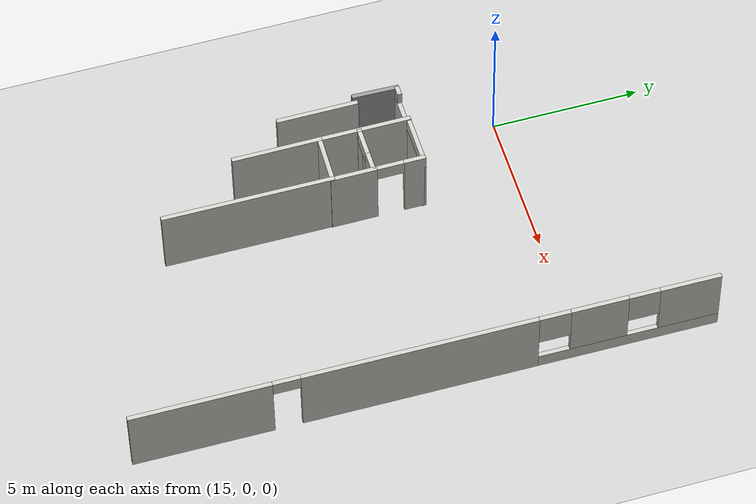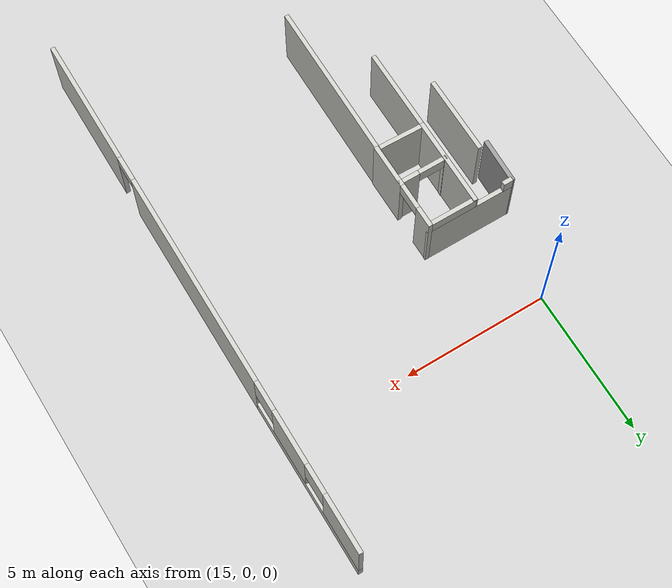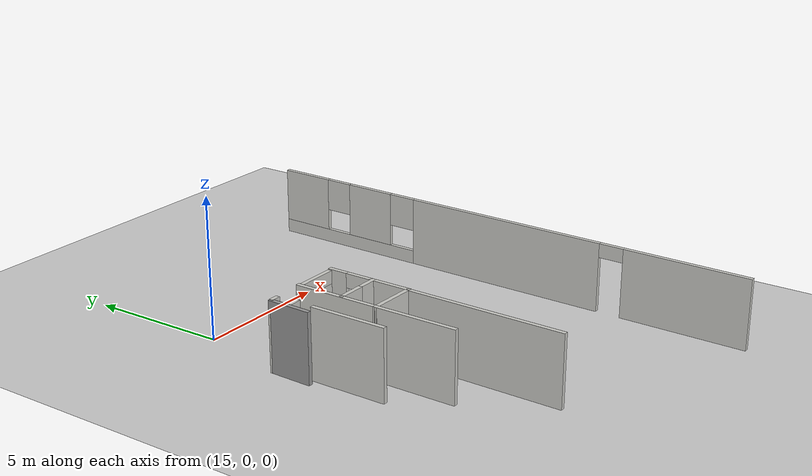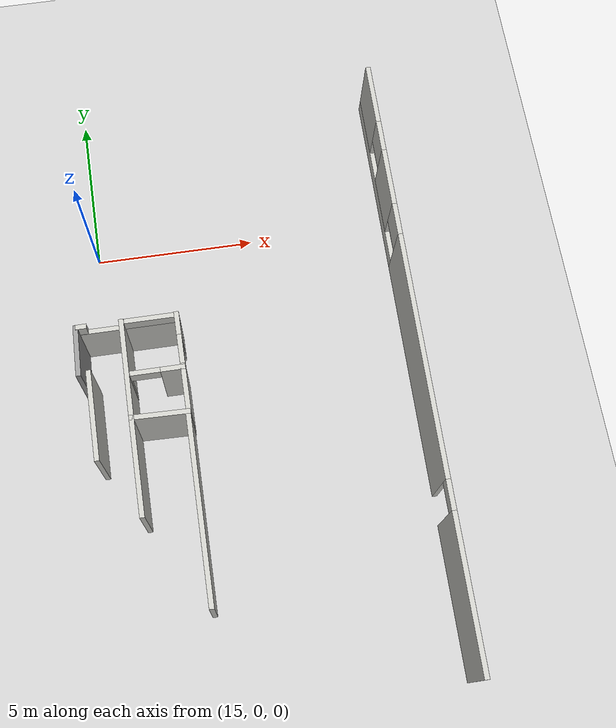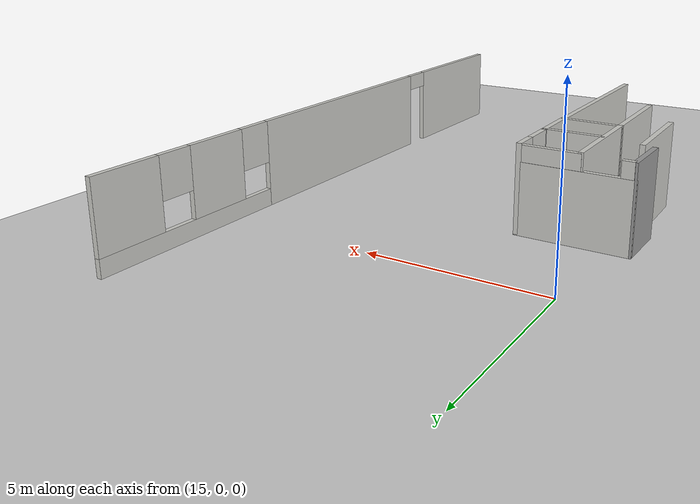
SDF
<sdf version="1.6">
 <world name="default">
  <model name="ground_plane">
   <static>1</static>
   <link name="link">
    <collision name="collision">
     <geometry><plane><normal>0 0 1</normal><size>100 100</size></plane></geometry>
     <surface><friction><ode><mu>100</mu><mu2>50</mu2></ode></friction></surface>
    </collision>
    <visual name="visual">
     <cast_shadows>0</cast_shadows>
     <geometry><plane><normal>0 0 1</normal><size>100 100</size></plane></geometry>
     <material>
      <script><uri>file://media/materials/scripts/gazebo.material</uri><name>Gazebo/Grey</name></script>
     </material>
    </visual>
   </link>
  </model>
  <model name="Erle Office">
   <link name="Wall_44">
    <pose>14.072 -0.286045 0 0 -0 1.56075</pose>
    <visual name="Wall_44_Visual_1">
     <pose>-0.251304 0 1.25 0 -0 0</pose>
     <geometry><box><size>7.67562 0.15 2.5</size></box></geometry>
     <material>
      <script><uri>file://media/materials/scripts/gazebo.material</uri><name>Gazebo/CeilingTiled</name></script>
      <ambient>1 1 1 1</ambient>
      <diffuse>1 1 1 1</diffuse>
      <specular>0 0 0 1</specular>
      <emissive>0 0 0 1</emissive>
     </material>
    </visual>
    <visual name="Wall_44_Visual_0">
     <pose>-7.27546 0 1.25 0 -0 0</pose>
     <geometry><box><size>4.57268 0.15 2.5</size></box></geometry>
     <material>
      <script><uri>file://media/materials/scripts/gazebo.material</uri><name>Gazebo/CeilingTiled</name></script>
      <ambient>1 1 1 1</ambient>
      <diffuse>1 1 1 1</diffuse>
      <specular>0 0 0 1</specular>
      <emissive>0 0 0 1</emissive>
     </material>
    </visual>
    <visual name="Wall_44_Visual_2">
     <pose>6.57415 0 0.25 0 -0 0</pose>
     <geometry><box><size>5.97529 0.15 0.5</size></box></geometry>
     <material>
      <script><uri>file://media/materials/scripts/gazebo.material</uri><name>Gazebo/CeilingTiled</name></script>
      <ambient>1 1 1 1</ambient>
      <diffuse>1 1 1 1</diffuse>
      <specular>0 0 0 1</specular>
      <emissive>0 0 0 1</emissive>
     </material>
    </visual>
    <visual name="Wall_44_Visual_3">
     <pose>5.5734 0 1.5 0 -0 0</pose>
     <geometry><box><size>1.8927 0.15 2</size></box></geometry>
     <material>
      <script><uri>file://media/materials/scripts/gazebo.material</uri><name>Gazebo/CeilingTiled</name></script>
      <ambient>1 1 1 1</ambient>
      <diffuse>1 1 1 1</diffuse>
      <specular>0 0 0 1</specular>
      <emissive>0 0 0 1</emissive>
     </material>
    </visual>
    <visual name="Wall_44_Visual_4">
     <pose>8.55556 0 1.5 0 -0 0</pose>
     <geometry><box><size>2.01248 0.15 2</size></box></geometry>
     <material>
      <script><uri>file://media/materials/scripts/gazebo.material</uri><name>Gazebo/CeilingTiled</name></script>
      <ambient>1 1 1 1</ambient>
      <diffuse>1 1 1 1</diffuse>
      <specular>0 0 0 1</specular>
      <emissive>0 0 0 1</emissive>
     </material>
    </visual>
    <visual name="Wall_44_Visual_5">
     <pose>4.10678 0 1.9 0 -0 0</pose>
     <geometry><box><size>1.04054 0.15 1.2</size></box></geometry>
     <material>
      <script><uri>file://media/materials/scripts/gazebo.material</uri><name>Gazebo/CeilingTiled</name></script>
      <ambient>1 1 1 1</ambient>
      <diffuse>1 1 1 1</diffuse>
      <specular>0 0 0 1</specular>
      <emissive>0 0 0 1</emissive>
     </material>
    </visual>
    <visual name="Wall_44_Visual_6">
     <pose>7.03453 0 1.9 0 -0 0</pose>
     <geometry><box><size>1.02956 0.15 1.2</size></box></geometry>
     <material>
      <script><uri>file://media/materials/scripts/gazebo.material</uri><name>Gazebo/CeilingTiled</name></script>
      <ambient>1 1 1 1</ambient>
      <diffuse>1 1 1 1</diffuse>
      <specular>0 0 0 1</specular>
      <emissive>0 0 0 1</emissive>
     </material>
    </visual>
    <visual name="Wall_44_Visual_7">
     <pose>-4.53911 0 2.25 0 -0 0</pose>
     <geometry><box><size>0.9 0.15 0.5</size></box></geometry>
     <material>
      <script><uri>file://media/materials/scripts/gazebo.material</uri><name>Gazebo/CeilingTiled</name></script>
      <ambient>1 1 1 1</ambient>
      <diffuse>1 1 1 1</diffuse>
      <specular>0 0 0 1</specular>
      <emissive>0 0 0 1</emissive>
     </material>
    </visual>
    <collision name="Wall_44_Collision_0">
     <pose>-7.27546 0 1.25 0 -0 0</pose>
     <geometry><box><size>4.57268 0.15 2.5</size></box></geometry>
     <surface>
      <friction>
       <ode><mu>1</mu><mu2>1</mu2><fdir1>0 0 0</fdir1><slip1>0</slip1><slip2>0</slip2></ode>
       <torsional>
        <coefficient>1</coefficient>
        <patch_radius>0</patch_radius>
        <surface_radius>0</surface_radius>
        <use_patch_radius>1</use_patch_radius>
        <ode><slip>0</slip></ode>
       </torsional>
      </friction>
      <bounce><restitution_coefficient>0</restitution_coefficient><threshold>1e+06</threshold></bounce>
      <contact>
       <collide_without_contact>0</collide_without_contact>
       <collide_without_contact_bitmask>1</collide_without_contact_bitmask>
       <collide_bitmask>1</collide_bitmask>
       <ode>
        <soft_cfm>0</soft_cfm>
        <soft_erp>0.2</soft_erp>
        <kp>1e+13</kp>
        <kd>1</kd>
        <max_vel>0.01</max_vel>
        <min_depth>0</min_depth>
       </ode>
       <bullet>
        <split_impulse>1</split_impulse>
        <split_impulse_penetration_threshold>-0.01</split_impulse_penetration_threshold>
        <soft_cfm>0</soft_cfm>
        <soft_erp>0.2</soft_erp>
        <kp>1e+13</kp>
        <kd>1</kd>
       </bullet>
      </contact>
     </surface>
    </collision>
    <collision name="Wall_44_Collision_2">
     <pose>6.57415 0 0.25 0 -0 0</pose>
     <geometry><box><size>5.97529 0.15 0.5</size></box></geometry>
     <surface>
      <friction>
       <ode><mu>1</mu><mu2>1</mu2><fdir1>0 0 0</fdir1><slip1>0</slip1><slip2>0</slip2></ode>
       <torsional>
        <coefficient>1</coefficient>
        <patch_radius>0</patch_radius>
        <surface_radius>0</surface_radius>
        <use_patch_radius>1</use_patch_radius>
        <ode><slip>0</slip></ode>
       </torsional>
      </friction>
      <bounce><restitution_coefficient>0</restitution_coefficient><threshold>1e+06</threshold></bounce>
      <contact>
       <collide_without_contact>0</collide_without_contact>
       <collide_without_contact_bitmask>1</collide_without_contact_bitmask>
       <collide_bitmask>1</collide_bitmask>
       <ode>
        <soft_cfm>0</soft_cfm>
        <soft_erp>0.2</soft_erp>
        <kp>1e+13</kp>
        <kd>1</kd>
        <max_vel>0.01</max_vel>
        <min_depth>0</min_depth>
       </ode>
       <bullet>
        <split_impulse>1</split_impulse>
        <split_impulse_penetration_threshold>-0.01</split_impulse_penetration_threshold>
        <soft_cfm>0</soft_cfm>
        <soft_erp>0.2</soft_erp>
        <kp>1e+13</kp>
        <kd>1</kd>
       </bullet>
      </contact>
     </surface>
    </collision>
    <collision name="Wall_44_Collision_3">
     <pose>5.5734 0 1.5 0 -0 0</pose>
     <geometry><box><size>1.8927 0.15 2</size></box></geometry>
     <surface>
      <friction>
       <ode><mu>1</mu><mu2>1</mu2><fdir1>0 0 0</fdir1><slip1>0</slip1><slip2>0</slip2></ode>
       <torsional>
        <coefficient>1</coefficient>
        <patch_radius>0</patch_radius>
        <surface_radius>0</surface_radius>
        <use_patch_radius>1</use_patch_radius>
        <ode><slip>0</slip></ode>
       </torsional>
      </friction>
      <bounce><restitution_coefficient>0</restitution_coefficient><threshold>1e+06</threshold></bounce>
      <contact>
       <collide_without_contact>0</collide_without_contact>
       <collide_without_contact_bitmask>1</collide_without_contact_bitmask>
       <collide_bitmask>1</collide_bitmask>
       <ode>
        <soft_cfm>0</soft_cfm>
        <soft_erp>0.2</soft_erp>
        <kp>1e+13</kp>
        <kd>1</kd>
        <max_vel>0.01</max_vel>
        <min_depth>0</min_depth>
       </ode>
       <bullet>
        <split_impulse>1</split_impulse>
        <split_impulse_penetration_threshold>-0.01</split_impulse_penetration_threshold>
        <soft_cfm>0</soft_cfm>
        <soft_erp>0.2</soft_erp>
        <kp>1e+13</kp>
        <kd>1</kd>
       </bullet>
      </contact>
     </surface>
    </collision>
    <collision name="Wall_44_Collision_1">
     <pose>-0.251304 0 1.25 0 -0 0</pose>
     <geometry><box><size>7.67562 0.15 2.5</size></box></geometry>
     <surface>
      <friction>
       <ode><mu>1</mu><mu2>1</mu2><fdir1>0 0 0</fdir1><slip1>0</slip1><slip2>0</slip2></ode>
       <torsional>
        <coefficient>1</coefficient>
        <patch_radius>0</patch_radius>
        <surface_radius>0</surface_radius>
        <use_patch_radius>1</use_patch_radius>
        <ode><slip>0</slip></ode>
       </torsional>
      </friction>
      <bounce><restitution_coefficient>0</restitution_coefficient><threshold>1e+06</threshold></bounce>
      <contact>
       <collide_without_contact>0</collide_without_contact>
       <collide_without_contact_bitmask>1</collide_without_contact_bitmask>
       <collide_bitmask>1</collide_bitmask>
       <ode>
        <soft_cfm>0</soft_cfm>
        <soft_erp>0.2</soft_erp>
        <kp>1e+13</kp>
        <kd>1</kd>
        <max_vel>0.01</max_vel>
        <min_depth>0</min_depth>
       </ode>
       <bullet>
        <split_impulse>1</split_impulse>
        <split_impulse_penetration_threshold>-0.01</split_impulse_penetration_threshold>
        <soft_cfm>0</soft_cfm>
        <soft_erp>0.2</soft_erp>
        <kp>1e+13</kp>
        <kd>1</kd>
       </bullet>
      </contact>
     </surface>
    </collision>
    <collision name="Wall_44_Collision_4">
     <pose>8.55556 0 1.5 0 -0 0</pose>
     <geometry><box><size>2.01248 0.15 2</size></box></geometry>
     <surface>
      <friction>
       <ode><mu>1</mu><mu2>1</mu2><fdir1>0 0 0</fdir1><slip1>0</slip1><slip2>0</slip2></ode>
       <torsional>
        <coefficient>1</coefficient>
        <patch_radius>0</patch_radius>
        <surface_radius>0</surface_radius>
        <use_patch_radius>1</use_patch_radius>
        <ode><slip>0</slip></ode>
       </torsional>
      </friction>
      <bounce><restitution_coefficient>0</restitution_coefficient><threshold>1e+06</threshold></bounce>
      <contact>
       <collide_without_contact>0</collide_without_contact>
       <collide_without_contact_bitmask>1</collide_without_contact_bitmask>
       <collide_bitmask>1</collide_bitmask>
       <ode>
        <soft_cfm>0</soft_cfm>
        <soft_erp>0.2</soft_erp>
        <kp>1e+13</kp>
        <kd>1</kd>
        <max_vel>0.01</max_vel>
        <min_depth>0</min_depth>
       </ode>
       <bullet>
        <split_impulse>1</split_impulse>
        <split_impulse_penetration_threshold>-0.01</split_impulse_penetration_threshold>
        <soft_cfm>0</soft_cfm>
        <soft_erp>0.2</soft_erp>
        <kp>1e+13</kp>
        <kd>1</kd>
       </bullet>
      </contact>
     </surface>
    </collision>
    <collision name="Wall_44_Collision_5">
     <pose>4.10678 0 1.9 0 -0 0</pose>
     <geometry><box><size>1.04054 0.15 1.2</size></box></geometry>
     <surface>
      <friction>
       <ode><mu>1</mu><mu2>1</mu2><fdir1>0 0 0</fdir1><slip1>0</slip1><slip2>0</slip2></ode>
       <torsional>
        <coefficient>1</coefficient>
        <patch_radius>0</patch_radius>
        <surface_radius>0</surface_radius>
        <use_patch_radius>1</use_patch_radius>
        <ode><slip>0</slip></ode>
       </torsional>
      </friction>
      <bounce><restitution_coefficient>0</restitution_coefficient><threshold>1e+06</threshold></bounce>
      <contact>
       <collide_without_contact>0</collide_without_contact>
       <collide_without_contact_bitmask>1</collide_without_contact_bitmask>
       <collide_bitmask>1</collide_bitmask>
       <ode>
        <soft_cfm>0</soft_cfm>
        <soft_erp>0.2</soft_erp>
        <kp>1e+13</kp>
        <kd>1</kd>
        <max_vel>0.01</max_vel>
        <min_depth>0</min_depth>
       </ode>
       <bullet>
        <split_impulse>1</split_impulse>
        <split_impulse_penetration_threshold>-0.01</split_impulse_penetration_threshold>
        <soft_cfm>0</soft_cfm>
        <soft_erp>0.2</soft_erp>
        <kp>1e+13</kp>
        <kd>1</kd>
       </bullet>
      </contact>
     </surface>
    </collision>
    <collision name="Wall_44_Collision_6">
     <pose>7.03453 0 1.9 0 -0 0</pose>
     <geometry><box><size>1.02956 0.15 1.2</size></box></geometry>
     <surface>
      <friction>
       <ode><mu>1</mu><mu2>1</mu2><fdir1>0 0 0</fdir1><slip1>0</slip1><slip2>0</slip2></ode>
       <torsional>
        <coefficient>1</coefficient>
        <patch_radius>0</patch_radius>
        <surface_radius>0</surface_radius>
        <use_patch_radius>1</use_patch_radius>
        <ode><slip>0</slip></ode>
       </torsional>
      </friction>
      <bounce><restitution_coefficient>0</restitution_coefficient><threshold>1e+06</threshold></bounce>
      <contact>
       <collide_without_contact>0</collide_without_contact>
       <collide_without_contact_bitmask>1</collide_without_contact_bitmask>
       <collide_bitmask>1</collide_bitmask>
       <ode>
        <soft_cfm>0</soft_cfm>
        <soft_erp>0.2</soft_erp>
        <kp>1e+13</kp>
        <kd>1</kd>
        <max_vel>0.01</max_vel>
        <min_depth>0</min_depth>
       </ode>
       <bullet>
        <split_impulse>1</split_impulse>
        <split_impulse_penetration_threshold>-0.01</split_impulse_penetration_threshold>
        <soft_cfm>0</soft_cfm>
        <soft_erp>0.2</soft_erp>
        <kp>1e+13</kp>
        <kd>1</kd>
       </bullet>
      </contact>
     </surface>
    </collision>
    <collision name="Wall_44_Collision_7">
     <pose>-4.53911 0 2.25 0 -0 0</pose>
     <geometry><box><size>0.9 0.15 0.5</size></box></geometry>
     <surface>
      <friction>
       <ode><mu>1</mu><mu2>1</mu2><fdir1>0 0 0</fdir1><slip1>0</slip1><slip2>0</slip2></ode>
       <torsional>
        <coefficient>1</coefficient>
        <patch_radius>0</patch_radius>
        <surface_radius>0</surface_radius>
        <use_patch_radius>1</use_patch_radius>
        <ode><slip>0</slip></ode>
       </torsional>
      </friction>
      <bounce><restitution_coefficient>0</restitution_coefficient><threshold>1e+06</threshold></bounce>
      <contact>
       <collide_without_contact>0</collide_without_contact>
       <collide_without_contact_bitmask>1</collide_without_contact_bitmask>
       <collide_bitmask>1</collide_bitmask>
       <ode>
        <soft_cfm>0</soft_cfm>
        <soft_erp>0.2</soft_erp>
        <kp>1e+13</kp>
        <kd>1</kd>
        <max_vel>0.01</max_vel>
        <min_depth>0</min_depth>
       </ode>
       <bullet>
        <split_impulse>1</split_impulse>
        <split_impulse_penetration_threshold>-0.01</split_impulse_penetration_threshold>
        <soft_cfm>0</soft_cfm>
        <soft_erp>0.2</soft_erp>
        <kp>1e+13</kp>
        <kd>1</kd>
       </bullet>
      </contact>
     </surface>
    </collision>
   </link>
   <link name="Wall_50">
    <pose>4.27091 -1.06611 0 0 0 -1.5708</pose>
    <visual name="Wall_50_Visual">
     <pose>0 0 1.25 0 -0 0</pose>
     <geometry><box><size>2.73877 0.15 2.5</size></box></geometry>
     <material>
      <script><uri>file://media/materials/scripts/gazebo.material</uri><name>Gazebo/CeilingTiled</name></script>
      <ambient>1 1 1 1</ambient>
      <diffuse>1 1 1 1</diffuse>
      <specular>0 0 0 1</specular>
      <emissive>0 0 0 1</emissive>
     </material>
    </visual>
    <collision name="Wall_50_Collision">
     <pose>0 0 1.25 0 -0 0</pose>
     <geometry><box><size>2.73877 0.15 2.5</size></box></geometry>
     <surface>
      <friction>
       <ode><mu>1</mu><mu2>1</mu2><fdir1>0 0 0</fdir1><slip1>0</slip1><slip2>0</slip2></ode>
       <torsional>
        <coefficient>1</coefficient>
        <patch_radius>0</patch_radius>
        <surface_radius>0</surface_radius>
        <use_patch_radius>1</use_patch_radius>
        <ode><slip>0</slip></ode>
       </torsional>
      </friction>
      <bounce><restitution_coefficient>0</restitution_coefficient><threshold>1e+06</threshold></bounce>
      <contact>
       <collide_without_contact>0</collide_without_contact>
       <collide_without_contact_bitmask>1</collide_without_contact_bitmask>
       <collide_bitmask>1</collide_bitmask>
       <ode>
        <soft_cfm>0</soft_cfm>
        <soft_erp>0.2</soft_erp>
        <kp>1e+13</kp>
        <kd>1</kd>
        <max_vel>0.01</max_vel>
        <min_depth>0</min_depth>
       </ode>
       <bullet>
        <split_impulse>1</split_impulse>
        <split_impulse_penetration_threshold>-0.01</split_impulse_penetration_threshold>
        <soft_cfm>0</soft_cfm>
        <soft_erp>0.2</soft_erp>
        <kp>1e+13</kp>
        <kd>1</kd>
       </bullet>
      </contact>
     </surface>
    </collision>
   </link>
   <link name="Wall_59">
    <pose>6.1896 -1.32546 0 0 0 -0.02452</pose>
    <visual name="Wall_59_Visual">
     <pose>0 0 1.25 0 -0 0</pose>
     <geometry><box><size>1.79072 0.15 2.5</size></box></geometry>
     <material>
      <script><uri>file://media/materials/scripts/gazebo.material</uri><name>Gazebo/CeilingTiled</name></script>
      <ambient>1 1 1 1</ambient>
      <diffuse>1 1 1 1</diffuse>
      <specular>0 0 0 1</specular>
      <emissive>0 0 0 1</emissive>
     </material>
    </visual>
    <collision name="Wall_59_Collision">
     <pose>0 0 1.25 0 -0 0</pose>
     <geometry><box><size>1.79072 0.15 2.5</size></box></geometry>
     <surface>
      <friction>
       <ode><mu>1</mu><mu2>1</mu2><fdir1>0 0 0</fdir1><slip1>0</slip1><slip2>0</slip2></ode>
       <torsional>
        <coefficient>1</coefficient>
        <patch_radius>0</patch_radius>
        <surface_radius>0</surface_radius>
        <use_patch_radius>1</use_patch_radius>
        <ode><slip>0</slip></ode>
       </torsional>
      </friction>
      <bounce><restitution_coefficient>0</restitution_coefficient><threshold>1e+06</threshold></bounce>
      <contact>
       <collide_without_contact>0</collide_without_contact>
       <collide_without_contact_bitmask>1</collide_without_contact_bitmask>
       <collide_bitmask>1</collide_bitmask>
       <ode>
        <soft_cfm>0</soft_cfm>
        <soft_erp>0.2</soft_erp>
        <kp>1e+13</kp>
        <kd>1</kd>
        <max_vel>0.01</max_vel>
        <min_depth>0</min_depth>
       </ode>
       <bullet>
        <split_impulse>1</split_impulse>
        <split_impulse_penetration_threshold>-0.01</split_impulse_penetration_threshold>
        <soft_cfm>0</soft_cfm>
        <soft_erp>0.2</soft_erp>
        <kp>1e+13</kp>
        <kd>1</kd>
       </bullet>
      </contact>
     </surface>
    </collision>
   </link>
   <link name="Wall_60">
    <pose>6.9896 -4.12547 0 0 0 -1.57803</pose>
    <visual name="Wall_60_Visual">
     <pose>0 0 1.25 0 -0 0</pose>
     <geometry><box><size>5.70992 0.15 2.5</size></box></geometry>
     <material>
      <script><uri>file://media/materials/scripts/gazebo.material</uri><name>Gazebo/CeilingTiled</name></script>
      <ambient>1 1 1 1</ambient>
      <diffuse>1 1 1 1</diffuse>
      <specular>0 0 0 1</specular>
      <emissive>0 0 0 1</emissive>
     </material>
    </visual>
    <collision name="Wall_60_Collision">
     <pose>0 0 1.25 0 -0 0</pose>
     <geometry><box><size>5.70992 0.15 2.5</size></box></geometry>
     <surface>
      <friction>
       <ode><mu>1</mu><mu2>1</mu2><fdir1>0 0 0</fdir1><slip1>0</slip1><slip2>0</slip2></ode>
       <torsional>
        <coefficient>1</coefficient>
        <patch_radius>0</patch_radius>
        <surface_radius>0</surface_radius>
        <use_patch_radius>1</use_patch_radius>
        <ode><slip>0</slip></ode>
       </torsional>
      </friction>
      <bounce><restitution_coefficient>0</restitution_coefficient><threshold>1e+06</threshold></bounce>
      <contact>
       <collide_without_contact>0</collide_without_contact>
       <collide_without_contact_bitmask>1</collide_without_contact_bitmask>
       <collide_bitmask>1</collide_bitmask>
       <ode>
        <soft_cfm>0</soft_cfm>
        <soft_erp>0.2</soft_erp>
        <kp>1e+13</kp>
        <kd>1</kd>
        <max_vel>0.01</max_vel>
        <min_depth>0</min_depth>
       </ode>
       <bullet>
        <split_impulse>1</split_impulse>
        <split_impulse_penetration_threshold>-0.01</split_impulse_penetration_threshold>
        <soft_cfm>0</soft_cfm>
        <soft_erp>0.2</soft_erp>
        <kp>1e+13</kp>
        <kd>1</kd>
       </bullet>
      </contact>
     </surface>
    </collision>
   </link>
   <link name="Wall_62">
    <pose>7.02972 0.168142 0 0 -0 1.57087</pose>
    <visual name="Wall_62_Visual_1">
     <pose>1.22569 0 1.25 0 -0 0</pose>
     <geometry><box><size>0.726063 0.15 2.5</size></box></geometry>
     <material>
      <script><uri>file://media/materials/scripts/gazebo.material</uri><name>Gazebo/CeilingTiled</name></script>
      <ambient>1 1 1 1</ambient>
      <diffuse>1 1 1 1</diffuse>
      <specular>0 0 0 1</specular>
      <emissive>0 0 0 1</emissive>
     </material>
    </visual>
    <visual name="Wall_62_Visual_0">
     <pose>-0.813032 0 1.25 0 -0 0</pose>
     <geometry><box><size>1.55138 0.15 2.5</size></box></geometry>
     <material>
      <script><uri>file://media/materials/scripts/gazebo.material</uri><name>Gazebo/CeilingTiled</name></script>
      <ambient>1 1 1 1</ambient>
      <diffuse>1 1 1 1</diffuse>
      <specular>0 0 0 1</specular>
      <emissive>0 0 0 1</emissive>
     </material>
    </visual>
    <visual name="Wall_62_Visual_2">
     <pose>0.412657 0 2.25 0 -0 0</pose>
     <geometry><box><size>0.9 0.15 0.5</size></box></geometry>
     <material>
      <script><uri>file://media/materials/scripts/gazebo.material</uri><name>Gazebo/CeilingTiled</name></script>
      <ambient>1 1 1 1</ambient>
      <diffuse>1 1 1 1</diffuse>
      <specular>0 0 0 1</specular>
      <emissive>0 0 0 1</emissive>
     </material>
    </visual>
    <collision name="Wall_62_Collision_0">
     <pose>-0.813032 0 1.25 0 -0 0</pose>
     <geometry><box><size>1.55138 0.15 2.5</size></box></geometry>
     <surface>
      <friction>
       <ode><mu>1</mu><mu2>1</mu2><fdir1>0 0 0</fdir1><slip1>0</slip1><slip2>0</slip2></ode>
       <torsional>
        <coefficient>1</coefficient>
        <patch_radius>0</patch_radius>
        <surface_radius>0</surface_radius>
        <use_patch_radius>1</use_patch_radius>
        <ode><slip>0</slip></ode>
       </torsional>
      </friction>
      <bounce><restitution_coefficient>0</restitution_coefficient><threshold>1e+06</threshold></bounce>
      <contact>
       <collide_without_contact>0</collide_without_contact>
       <collide_without_contact_bitmask>1</collide_without_contact_bitmask>
       <collide_bitmask>1</collide_bitmask>
       <ode>
        <soft_cfm>0</soft_cfm>
        <soft_erp>0.2</soft_erp>
        <kp>1e+13</kp>
        <kd>1</kd>
        <max_vel>0.01</max_vel>
        <min_depth>0</min_depth>
       </ode>
       <bullet>
        <split_impulse>1</split_impulse>
        <split_impulse_penetration_threshold>-0.01</split_impulse_penetration_threshold>
        <soft_cfm>0</soft_cfm>
        <soft_erp>0.2</soft_erp>
        <kp>1e+13</kp>
        <kd>1</kd>
       </bullet>
      </contact>
     </surface>
    </collision>
    <collision name="Wall_62_Collision_1">
     <pose>1.22569 0 1.25 0 -0 0</pose>
     <geometry><box><size>0.726063 0.15 2.5</size></box></geometry>
     <surface>
      <friction>
       <ode><mu>1</mu><mu2>1</mu2><fdir1>0 0 0</fdir1><slip1>0</slip1><slip2>0</slip2></ode>
       <torsional>
        <coefficient>1</coefficient>
        <patch_radius>0</patch_radius>
        <surface_radius>0</surface_radius>
        <use_patch_radius>1</use_patch_radius>
        <ode><slip>0</slip></ode>
       </torsional>
      </friction>
      <bounce><restitution_coefficient>0</restitution_coefficient><threshold>1e+06</threshold></bounce>
      <contact>
       <collide_without_contact>0</collide_without_contact>
       <collide_without_contact_bitmask>1</collide_without_contact_bitmask>
       <collide_bitmask>1</collide_bitmask>
       <ode>
        <soft_cfm>0</soft_cfm>
        <soft_erp>0.2</soft_erp>
        <kp>1e+13</kp>
        <kd>1</kd>
        <max_vel>0.01</max_vel>
        <min_depth>0</min_depth>
       </ode>
       <bullet>
        <split_impulse>1</split_impulse>
        <split_impulse_penetration_threshold>-0.01</split_impulse_penetration_threshold>
        <soft_cfm>0</soft_cfm>
        <soft_erp>0.2</soft_erp>
        <kp>1e+13</kp>
        <kd>1</kd>
       </bullet>
      </contact>
     </surface>
    </collision>
    <collision name="Wall_62_Collision_2">
     <pose>0.412657 0 2.25 0 -0 0</pose>
     <geometry><box><size>0.9 0.15 0.5</size></box></geometry>
     <surface>
      <friction>
       <ode><mu>1</mu><mu2>1</mu2><fdir1>0 0 0</fdir1><slip1>0</slip1><slip2>0</slip2></ode>
       <torsional>
        <coefficient>1</coefficient>
        <patch_radius>0</patch_radius>
        <surface_radius>0</surface_radius>
        <use_patch_radius>1</use_patch_radius>
        <ode><slip>0</slip></ode>
       </torsional>
      </friction>
      <bounce><restitution_coefficient>0</restitution_coefficient><threshold>1e+06</threshold></bounce>
      <contact>
       <collide_without_contact>0</collide_without_contact>
       <collide_without_contact_bitmask>1</collide_without_contact_bitmask>
       <collide_bitmask>1</collide_bitmask>
       <ode>
        <soft_cfm>0</soft_cfm>
        <soft_erp>0.2</soft_erp>
        <kp>1e+13</kp>
        <kd>1</kd>
        <max_vel>0.01</max_vel>
        <min_depth>0</min_depth>
       </ode>
       <bullet>
        <split_impulse>1</split_impulse>
        <split_impulse_penetration_threshold>-0.01</split_impulse_penetration_threshold>
        <soft_cfm>0</soft_cfm>
        <soft_erp>0.2</soft_erp>
        <kp>1e+13</kp>
        <kd>1</kd>
       </bullet>
      </contact>
     </surface>
    </collision>
   </link>
   <link name="Wall_64">
    <pose>3.99245 0.967831 -0.048141 0 0 -1.59896</pose>
    <visual name="Wall_64_Visual">
     <pose>0 0 1.25 0 -0 0</pose>
     <geometry><box><size>1.57806 0.15 2.5</size></box></geometry>
     <material>
      <script><uri>file://media/materials/scripts/gazebo.material</uri><name>Gazebo/Grey</name></script>
      <ambient>1 1 1 1</ambient>
      <diffuse>0.7 0.7 0.7 1</diffuse>
      <specular>0.01 0.01 0.01 1</specular>
      <emissive>0 0 0 1</emissive>
     </material>
    </visual>
    <collision name="Wall_64_Collision">
     <pose>0 0 1.25 0 -0 0</pose>
     <geometry><box><size>1.57806 0.15 2.5</size></box></geometry>
     <surface>
      <friction>
       <ode><mu>1</mu><mu2>1</mu2><fdir1>0 0 0</fdir1><slip1>0</slip1><slip2>0</slip2></ode>
       <torsional>
        <coefficient>1</coefficient>
        <patch_radius>0</patch_radius>
        <surface_radius>0</surface_radius>
        <use_patch_radius>1</use_patch_radius>
        <ode><slip>0</slip></ode>
       </torsional>
      </friction>
      <bounce><restitution_coefficient>0</restitution_coefficient><threshold>1e+06</threshold></bounce>
      <contact>
       <collide_without_contact>0</collide_without_contact>
       <collide_without_contact_bitmask>1</collide_without_contact_bitmask>
       <collide_bitmask>1</collide_bitmask>
       <ode>
        <soft_cfm>0</soft_cfm>
        <soft_erp>0.2</soft_erp>
        <kp>1e+13</kp>
        <kd>1</kd>
        <max_vel>0.01</max_vel>
        <min_depth>0</min_depth>
       </ode>
       <bullet>
        <split_impulse>1</split_impulse>
        <split_impulse_penetration_threshold>-0.01</split_impulse_penetration_threshold>
        <soft_cfm>0</soft_cfm>
        <soft_erp>0.2</soft_erp>
        <kp>1e+13</kp>
        <kd>1</kd>
       </bullet>
      </contact>
     </surface>
    </collision>
   </link>
   <link name="Wall_66">
    <pose>5.52109 1.68186 -0.32638 0 -0 0</pose>
    <inertial>
     <mass>0.960361</mass>
     <inertia>
      <ixx>0.923047</ixx>
      <ixy>0</ixy>
      <ixz>0</ixz>
      <iyy>0.923047</iyy>
      <iyz>0</iyz>
      <izz>0.960361</izz>
     </inertia>
    </inertial>
    <visual name="Wall_66_Visual">
     <pose>0 0 1.25 0 -0 0</pose>
     <geometry><box><size>3.16704 0.15 2.16082</size></box></geometry>
     <material>
      <script><uri>file://media/materials/scripts/gazebo.material</uri><name>Gazebo/CeilingTiled</name></script>
      <ambient>1 1 1 1</ambient>
      <diffuse>1 1 1 1</diffuse>
      <specular>0 0 0 1</specular>
      <emissive>0 0 0 1</emissive>
      <shader type="vertex"><normal_map>__default__</normal_map></shader>
     </material>
    </visual>
    <collision name="Wall_66_Collision">
     <pose>0 0 1.25 0 -0 0</pose>
     <geometry><box><size>3.16704 0.15 2.4009</size></box></geometry>
     <surface>
      <friction>
       <ode><mu>1</mu><mu2>1</mu2><fdir1>0 0 0</fdir1><slip1>0</slip1><slip2>0</slip2></ode>
       <torsional>
        <coefficient>1</coefficient>
        <patch_radius>0</patch_radius>
        <surface_radius>0</surface_radius>
        <use_patch_radius>1</use_patch_radius>
        <ode><slip>0</slip></ode>
       </torsional>
      </friction>
      <bounce><restitution_coefficient>0</restitution_coefficient><threshold>1e+06</threshold></bounce>
      <contact>
       <collide_without_contact>0</collide_without_contact>
       <collide_without_contact_bitmask>1</collide_without_contact_bitmask>
       <collide_bitmask>1</collide_bitmask>
       <ode>
        <soft_cfm>0</soft_cfm>
        <soft_erp>0.2</soft_erp>
        <kp>1e+13</kp>
        <kd>1</kd>
        <max_vel>0.01</max_vel>
        <min_depth>0</min_depth>
       </ode>
       <bullet>
        <split_impulse>1</split_impulse>
        <split_impulse_penetration_threshold>-0.01</split_impulse_penetration_threshold>
        <soft_cfm>0</soft_cfm>
        <soft_erp>0.2</soft_erp>
        <kp>1e+13</kp>
        <kd>1</kd>
       </bullet>
      </contact>
     </surface>
    </collision>
   </link>
   <link name="Wall_66_clone">
    <pose>6.18046 1.68133 0.98357 0 -0 0</pose>
    <inertial>
     <mass>0.106163</mass>
     <inertia>
      <ixx>0.0552736</ixx>
      <ixy>0</ixy>
      <ixz>0</ixz>
      <iyy>0.0166775</iyy>
      <iyz>0</iyz>
      <izz>0.0675665</izz>
     </inertia>
    </inertial>
    <visual name="Wall_66_Visual">
     <pose>0 0 1.25 0 -0 0</pose>
     <geometry><box><size>1.65441 0.15 0.457269</size></box></geometry>
     <material>
      <script><uri>file://media/materials/scripts/gazebo.material</uri><name>Gazebo/CeilingTiled</name></script>
      <ambient>1 1 1 1</ambient>
      <diffuse>1 1 1 1</diffuse>
      <specular>0 0 0 1</specular>
      <emissive>0 0 0 1</emissive>
      <shader type="vertex"><normal_map>__default__</normal_map></shader>
     </material>
    </visual>
    <collision name="Wall_66_Collision">
     <pose>0 0 1.25 0 -0 0</pose>
     <geometry><box><size>1.65441 0.15 0.508076</size></box></geometry>
     <surface>
      <friction>
       <ode><mu>1</mu><mu2>1</mu2><fdir1>0 0 0</fdir1><slip1>0</slip1><slip2>0</slip2></ode>
       <torsional>
        <coefficient>1</coefficient>
        <patch_radius>0</patch_radius>
        <surface_radius>0</surface_radius>
        <use_patch_radius>1</use_patch_radius>
        <ode><slip>0</slip></ode>
       </torsional>
      </friction>
      <bounce><restitution_coefficient>0</restitution_coefficient><threshold>1e+06</threshold></bounce>
      <contact>
       <collide_without_contact>0</collide_without_contact>
       <collide_without_contact_bitmask>1</collide_without_contact_bitmask>
       <collide_bitmask>1</collide_bitmask>
       <ode>
        <soft_cfm>0</soft_cfm>
        <soft_erp>0.2</soft_erp>
        <kp>1e+13</kp>
        <kd>1</kd>
        <max_vel>0.01</max_vel>
        <min_depth>0</min_depth>
       </ode>
       <bullet>
        <split_impulse>1</split_impulse>
        <split_impulse_penetration_threshold>-0.01</split_impulse_penetration_threshold>
        <soft_cfm>0</soft_cfm>
        <soft_erp>0.2</soft_erp>
        <kp>1e+13</kp>
        <kd>1</kd>
       </bullet>
      </contact>
     </surface>
    </collision>
   </link>
   <link name="Wall_66_clone_clone">
    <pose>4.17522 1.6941 0.98357 0 -0 0</pose>
    <inertial>
     <mass>0.021457</mass>
     <inertia>
      <ixx>0.0111716</ixx>
      <ixy>0</ixy>
      <ixz>0</ixz>
      <iyy>0.000562689</iyy>
      <iyz>0</iyz>
      <izz>0.0108481</izz>
     </inertia>
    </inertial>
    <visual name="Wall_66_Visual">
     <pose>0 0 1.25 0 -0 0</pose>
     <geometry><box><size>0.334378 0.15 0.457269</size></box></geometry>
     <material>
      <script><uri>file://media/materials/scripts/gazebo.material</uri><name>Gazebo/CeilingTiled</name></script>
      <ambient>1 1 1 1</ambient>
      <diffuse>1 1 1 1</diffuse>
      <specular>0 0 0 1</specular>
      <emissive>0 0 0 1</emissive>
      <shader type="vertex"><normal_map>__default__</normal_map></shader>
     </material>
    </visual>
    <collision name="Wall_66_Collision">
     <pose>0 0 1.25 0 -0 0</pose>
     <geometry><box><size>0.334378 0.15 0.508076</size></box></geometry>
     <surface>
      <friction>
       <ode><mu>1</mu><mu2>1</mu2><fdir1>0 0 0</fdir1><slip1>0</slip1><slip2>0</slip2></ode>
       <torsional>
        <coefficient>1</coefficient>
        <patch_radius>0</patch_radius>
        <surface_radius>0</surface_radius>
        <use_patch_radius>1</use_patch_radius>
        <ode><slip>0</slip></ode>
       </torsional>
      </friction>
      <bounce><restitution_coefficient>0</restitution_coefficient><threshold>1e+06</threshold></bounce>
      <contact>
       <collide_without_contact>0</collide_without_contact>
       <collide_without_contact_bitmask>1</collide_without_contact_bitmask>
       <collide_bitmask>1</collide_bitmask>
       <ode>
        <soft_cfm>0</soft_cfm>
        <soft_erp>0.2</soft_erp>
        <kp>1e+13</kp>
        <kd>1</kd>
        <max_vel>0.01</max_vel>
        <min_depth>0</min_depth>
       </ode>
       <bullet>
        <split_impulse>1</split_impulse>
        <split_impulse_penetration_threshold>-0.01</split_impulse_penetration_threshold>
        <soft_cfm>0</soft_cfm>
        <soft_erp>0.2</soft_erp>
        <kp>1e+13</kp>
        <kd>1</kd>
       </bullet>
      </contact>
     </surface>
    </collision>
   </link>
   <link name="Wall_68">
    <pose>5.36949 -2.73035 0 0 0 -1.5708</pose>
    <visual name="Wall_68_Visual">
     <pose>0 0 1.25 0 -0 0</pose>
     <geometry><box><size>3 0.15 2.5</size></box></geometry>
     <material>
      <script><uri>file://media/materials/scripts/gazebo.material</uri><name>Gazebo/CeilingTiled</name></script>
      <ambient>1 1 1 1</ambient>
      <diffuse>1 1 1 1</diffuse>
      <specular>0 0 0 1</specular>
      <emissive>0 0 0 1</emissive>
     </material>
    </visual>
    <collision name="Wall_68_Collision">
     <pose>0 0 1.25 0 -0 0</pose>
     <geometry><box><size>3 0.15 2.5</size></box></geometry>
     <surface>
      <friction>
       <ode><mu>1</mu><mu2>1</mu2><fdir1>0 0 0</fdir1><slip1>0</slip1><slip2>0</slip2></ode>
       <torsional>
        <coefficient>1</coefficient>
        <patch_radius>0</patch_radius>
        <surface_radius>0</surface_radius>
        <use_patch_radius>1</use_patch_radius>
        <ode><slip>0</slip></ode>
       </torsional>
      </friction>
      <bounce><restitution_coefficient>0</restitution_coefficient><threshold>1e+06</threshold></bounce>
      <contact>
       <collide_without_contact>0</collide_without_contact>
       <collide_without_contact_bitmask>1</collide_without_contact_bitmask>
       <collide_bitmask>1</collide_bitmask>
       <ode>
        <soft_cfm>0</soft_cfm>
        <soft_erp>0.2</soft_erp>
        <kp>1e+13</kp>
        <kd>1</kd>
        <max_vel>0.01</max_vel>
        <min_depth>0</min_depth>
       </ode>
       <bullet>
        <split_impulse>1</split_impulse>
        <split_impulse_penetration_threshold>-0.01</split_impulse_penetration_threshold>
        <soft_cfm>0</soft_cfm>
        <soft_erp>0.2</soft_erp>
        <kp>1e+13</kp>
        <kd>1</kd>
       </bullet>
      </contact>
     </surface>
    </collision>
   </link>
   <link name="Wall_90">
    <pose>5.37397 0.185242 0 0 0 -1.57381</pose>
    <visual name="Wall_90_Visual">
     <pose>0 0 1.25 0 -0 0</pose>
     <geometry><box><size>3.1312 0.15 2.5</size></box></geometry>
     <material>
      <script><uri>file://media/materials/scripts/gazebo.material</uri><name>Gazebo/CeilingTiled</name></script>
      <ambient>1 1 1 1</ambient>
      <diffuse>1 1 1 1</diffuse>
      <specular>0 0 0 1</specular>
      <emissive>0 0 0 1</emissive>
     </material>
    </visual>
    <collision name="Wall_90_Collision">
     <pose>0 0 1.25 0 -0 0</pose>
     <geometry><box><size>3.1312 0.15 2.5</size></box></geometry>
     <surface>
      <friction>
       <ode><mu>1</mu><mu2>1</mu2><fdir1>0 0 0</fdir1><slip1>0</slip1><slip2>0</slip2></ode>
       <torsional>
        <coefficient>1</coefficient>
        <patch_radius>0</patch_radius>
        <surface_radius>0</surface_radius>
        <use_patch_radius>1</use_patch_radius>
        <ode><slip>0</slip></ode>
       </torsional>
      </friction>
      <bounce><restitution_coefficient>0</restitution_coefficient><threshold>1e+06</threshold></bounce>
      <contact>
       <collide_without_contact>0</collide_without_contact>
       <collide_without_contact_bitmask>1</collide_without_contact_bitmask>
       <collide_bitmask>1</collide_bitmask>
       <ode>
        <soft_cfm>0</soft_cfm>
        <soft_erp>0.2</soft_erp>
        <kp>1e+13</kp>
        <kd>1</kd>
        <max_vel>0.01</max_vel>
        <min_depth>0</min_depth>
       </ode>
       <bullet>
        <split_impulse>1</split_impulse>
        <split_impulse_penetration_threshold>-0.01</split_impulse_penetration_threshold>
        <soft_cfm>0</soft_cfm>
        <soft_erp>0.2</soft_erp>
        <kp>1e+13</kp>
        <kd>1</kd>
       </bullet>
      </contact>
     </surface>
    </collision>
   </link>
   <link name="Wall_92">
    <pose>6.22409 0.018082 0 0 -0 0</pose>
    <visual name="Wall_92_Visual_0">
     <pose>-0.81916 0 1.25 0 -0 0</pose>
     <geometry><box><size>0.11168 0.15 2.5</size></box></geometry>
     <material>
      <script><uri>file://media/materials/scripts/gazebo.material</uri><name>Gazebo/CeilingTiled</name></script>
      <ambient>1 1 1 1</ambient>
      <diffuse>1 1 1 1</diffuse>
      <specular>0 0 0 1</specular>
      <emissive>0 0 0 1</emissive>
     </material>
    </visual>
    <visual name="Wall_92_Visual_1">
     <pose>0.50584 0 1.25 0 -0 0</pose>
     <geometry><box><size>0.73832 0.15 2.5</size></box></geometry>
     <material>
      <script><uri>file://media/materials/scripts/gazebo.material</uri><name>Gazebo/CeilingTiled</name></script>
      <ambient>1 1 1 1</ambient>
      <diffuse>1 1 1 1</diffuse>
      <specular>0 0 0 1</specular>
      <emissive>0 0 0 1</emissive>
     </material>
    </visual>
    <visual name="Wall_92_Visual_2">
     <pose>-0.31332 0 2.25 0 -0 0</pose>
     <geometry><box><size>0.9 0.15 0.5</size></box></geometry>
     <material>
      <script><uri>file://media/materials/scripts/gazebo.material</uri><name>Gazebo/CeilingTiled</name></script>
      <ambient>1 1 1 1</ambient>
      <diffuse>1 1 1 1</diffuse>
      <specular>0 0 0 1</specular>
      <emissive>0 0 0 1</emissive>
     </material>
    </visual>
    <collision name="Wall_92_Collision_0">
     <pose>-0.81916 0 1.25 0 -0 0</pose>
     <geometry><box><size>0.11168 0.15 2.5</size></box></geometry>
     <surface>
      <friction>
       <ode><mu>1</mu><mu2>1</mu2><fdir1>0 0 0</fdir1><slip1>0</slip1><slip2>0</slip2></ode>
       <torsional>
        <coefficient>1</coefficient>
        <patch_radius>0</patch_radius>
        <surface_radius>0</surface_radius>
        <use_patch_radius>1</use_patch_radius>
        <ode><slip>0</slip></ode>
       </torsional>
      </friction>
      <bounce><restitution_coefficient>0</restitution_coefficient><threshold>1e+06</threshold></bounce>
      <contact>
       <collide_without_contact>0</collide_without_contact>
       <collide_without_contact_bitmask>1</collide_without_contact_bitmask>
       <collide_bitmask>1</collide_bitmask>
       <ode>
        <soft_cfm>0</soft_cfm>
        <soft_erp>0.2</soft_erp>
        <kp>1e+13</kp>
        <kd>1</kd>
        <max_vel>0.01</max_vel>
        <min_depth>0</min_depth>
       </ode>
       <bullet>
        <split_impulse>1</split_impulse>
        <split_impulse_penetration_threshold>-0.01</split_impulse_penetration_threshold>
        <soft_cfm>0</soft_cfm>
        <soft_erp>0.2</soft_erp>
        <kp>1e+13</kp>
        <kd>1</kd>
       </bullet>
      </contact>
     </surface>
    </collision>
    <collision name="Wall_92_Collision_2">
     <pose>-0.31332 0 2.25 0 -0 0</pose>
     <geometry><box><size>0.9 0.15 0.5</size></box></geometry>
     <surface>
      <friction>
       <ode><mu>1</mu><mu2>1</mu2><fdir1>0 0 0</fdir1><slip1>0</slip1><slip2>0</slip2></ode>
       <torsional>
        <coefficient>1</coefficient>
        <patch_radius>0</patch_radius>
        <surface_radius>0</surface_radius>
        <use_patch_radius>1</use_patch_radius>
        <ode><slip>0</slip></ode>
       </torsional>
      </friction>
      <bounce><restitution_coefficient>0</restitution_coefficient><threshold>1e+06</threshold></bounce>
      <contact>
       <collide_without_contact>0</collide_without_contact>
       <collide_without_contact_bitmask>1</collide_without_contact_bitmask>
       <collide_bitmask>1</collide_bitmask>
       <ode>
        <soft_cfm>0</soft_cfm>
        <soft_erp>0.2</soft_erp>
        <kp>1e+13</kp>
        <kd>1</kd>
        <max_vel>0.01</max_vel>
        <min_depth>0</min_depth>
       </ode>
       <bullet>
        <split_impulse>1</split_impulse>
        <split_impulse_penetration_threshold>-0.01</split_impulse_penetration_threshold>
        <soft_cfm>0</soft_cfm>
        <soft_erp>0.2</soft_erp>
        <kp>1e+13</kp>
        <kd>1</kd>
       </bullet>
      </contact>
     </surface>
    </collision>
    <collision name="Wall_92_Collision_1">
     <pose>0.50584 0 1.25 0 -0 0</pose>
     <geometry><box><size>0.73832 0.15 2.5</size></box></geometry>
     <surface>
      <friction>
       <ode><mu>1</mu><mu2>1</mu2><fdir1>0 0 0</fdir1><slip1>0</slip1><slip2>0</slip2></ode>
       <torsional>
        <coefficient>1</coefficient>
        <patch_radius>0</patch_radius>
        <surface_radius>0</surface_radius>
        <use_patch_radius>1</use_patch_radius>
        <ode><slip>0</slip></ode>
       </torsional>
      </friction>
      <bounce><restitution_coefficient>0</restitution_coefficient><threshold>1e+06</threshold></bounce>
      <contact>
       <collide_without_contact>0</collide_without_contact>
       <collide_without_contact_bitmask>1</collide_without_contact_bitmask>
       <collide_bitmask>1</collide_bitmask>
       <ode>
        <soft_cfm>0</soft_cfm>
        <soft_erp>0.2</soft_erp>
        <kp>1e+13</kp>
        <kd>1</kd>
        <max_vel>0.01</max_vel>
        <min_depth>0</min_depth>
       </ode>
       <bullet>
        <split_impulse>1</split_impulse>
        <split_impulse_penetration_threshold>-0.01</split_impulse_penetration_threshold>
        <soft_cfm>0</soft_cfm>
        <soft_erp>0.2</soft_erp>
        <kp>1e+13</kp>
        <kd>1</kd>
       </bullet>
      </contact>
     </surface>
    </collision>
   </link>
   <static>1</static>
   <pose>10.3102 -4.80805 0 0 -0 0</pose>
  </model>
 </world>
</sdf>
